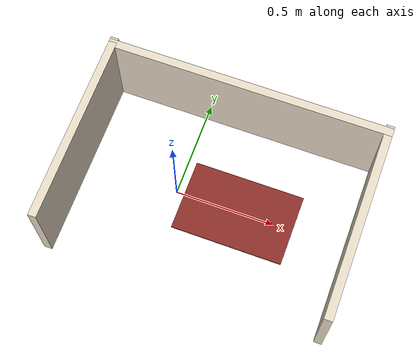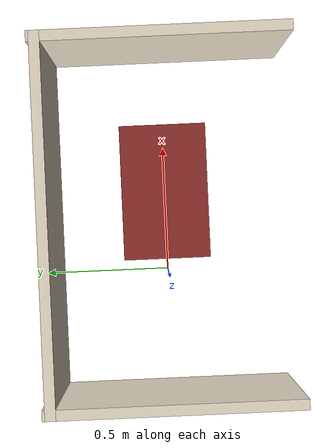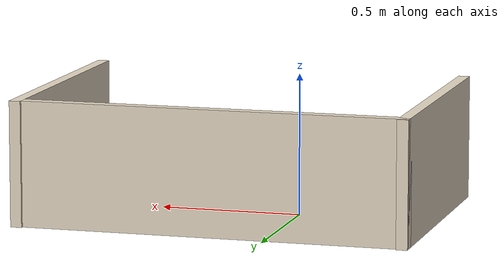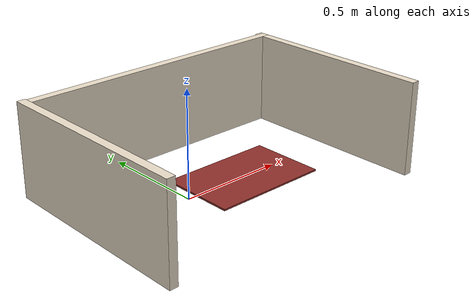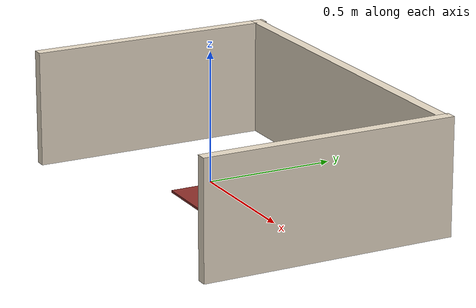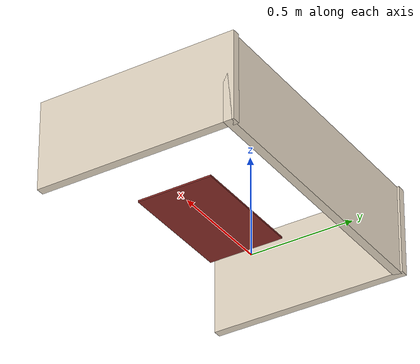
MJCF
<mujoco model="courier_apartment_props">
    <compiler angle="radian" autolimits="true"/>
    <asset>
        <material name="courier_rug" rgba="0.55 0.18 0.16 1"/>
        <material name="courier_wall" rgba="0.91 0.86 0.78 1"/>
    </asset>
    <worldbody>
        <!-- Non-colliding set dressing for trained-policy playback. -->
        <body name="apartment_props" pos="0 0 0">
            <geom name="courier_rug_geom" type="box" size="0.28 0.18 0.004"
                  pos="0.32 0 0.004" material="courier_rug"
                  contype="0" conaffinity="0"/>
            <geom name="courier_wall_back" type="box" size="0.7 0.02 0.22"
                  pos="0.2 0.45 0.22" material="courier_wall"
                  contype="0" conaffinity="0"/>
            <geom name="courier_wall_left" type="box" size="0.02 0.48 0.22"
                  pos="-0.48 0 0.22" material="courier_wall"
                  contype="0" conaffinity="0"/>
            <geom name="courier_wall_right" type="box" size="0.02 0.48 0.22"
                  pos="0.88 0 0.22" material="courier_wall"
                  contype="0" conaffinity="0"/>
        </body>
    </worldbody>
</mujoco>
